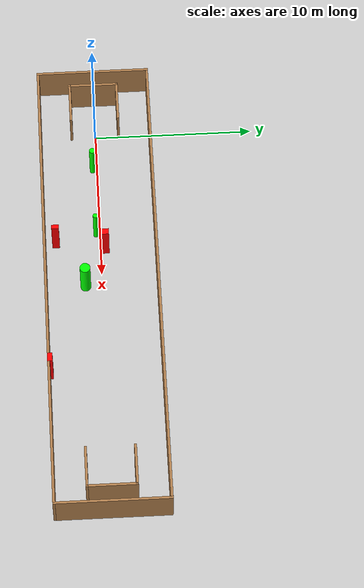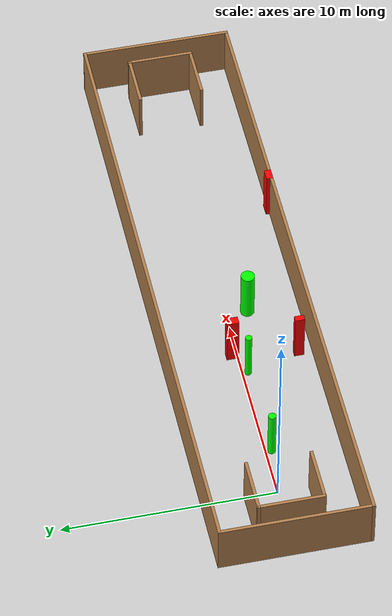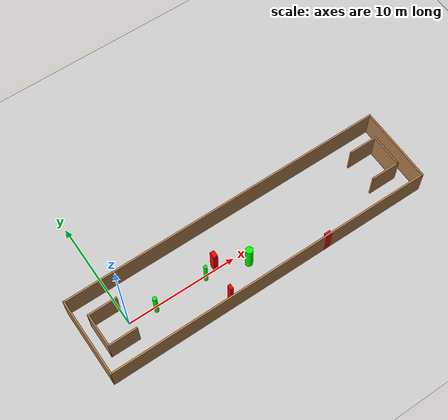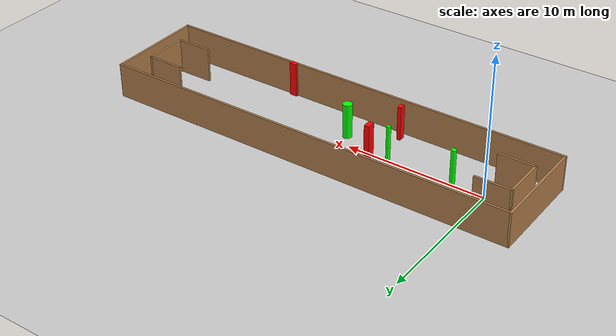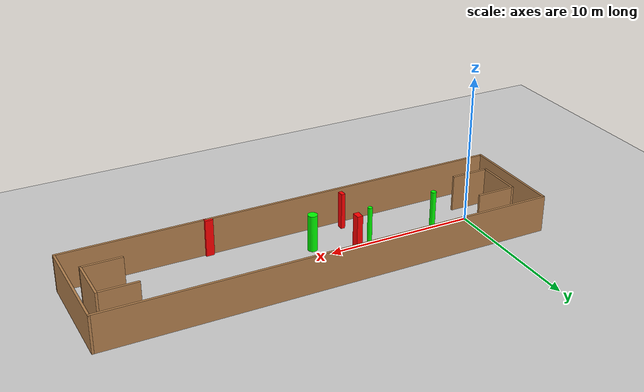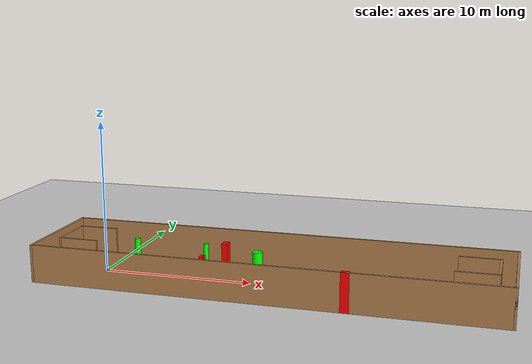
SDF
<sdf version="1.7">
 <world name="default">
  <light name="sun" type="directional">
   <pose>0 0 10 0 -0 0</pose>
   <diffuse>0.8 0.8 0.8 1</diffuse>
   <specular>0.2 0.2 0.2 1</specular>
   <attenuation>
    <range>1000</range>
    <constant>0.9</constant>
    <linear>0.01</linear>
    <quadratic>0.001</quadratic>
   </attenuation>
   <direction>-0.5 0.1 -0.9</direction>
   <spot><inner_angle>0</inner_angle><outer_angle>0</outer_angle><falloff>0</falloff></spot>
  </light>
  <model name="ground_plane">
   <static>1</static>
   <link name="link">
    <collision name="collision">
     <geometry><plane><normal>0 0 1</normal><size>100 100</size></plane></geometry>
     <surface>
      <contact><collide_bitmask>65535</collide_bitmask></contact>
      <friction><ode><mu>100</mu><mu2>50</mu2></ode></friction>
     </surface>
    </collision>
    <visual name="visual">
     <cast_shadows>0</cast_shadows>
     <geometry><plane><normal>0 0 1</normal><size>100 100</size></plane></geometry>
     <material>
      <script><uri>file://media/materials/scripts/gazebo.material</uri><name>Gazebo/Grey</name></script>
     </material>
    </visual>
   </link>
  </model>
  <gravity>0 0 -9.8</gravity>
  <magnetic_field>6e-06 2.3e-05 -4.2e-05</magnetic_field>
  <atmosphere type="adiabatic"/>
  <physics type="ode">
   <max_step_size>0.001</max_step_size>
   <real_time_factor>1</real_time_factor>
   <real_time_update_rate>1000</real_time_update_rate>
  </physics>
  <scene><ambient>0.4 0.4 0.4 1</ambient><background>0.7 0.7 0.7 1</background><shadows>1</shadows></scene>
  <spherical_coordinates>
   <surface_model>EARTH_WGS84</surface_model>
   <latitude_deg>0</latitude_deg>
   <longitude_deg>0</longitude_deg>
   <elevation>0</elevation>
   <heading_deg>0</heading_deg>
  </spherical_coordinates>
  <model name="my_base_walls">
   <link name="Wall_0">
    <collision name="Wall_0_Collision">
     <geometry><box><size>7.15 0.15 2.5</size></box></geometry>
     <pose>0 0 1.25 0 -0 0</pose>
    </collision>
    <visual name="Wall_0_Visual">
     <pose>0 0 1.25 0 -0 0</pose>
     <geometry><box><size>7.15 0.15 2.5</size></box></geometry>
     <material>
      <script><uri>file://media/materials/scripts/gazebo.material</uri><name>Gazebo/Wood</name></script>
      <ambient>1 1 1 1</ambient>
     </material>
     <meta><layer>0</layer></meta>
    </visual>
    <pose>-15 0 0 0 -0 1.5708</pose>
   </link>
   <link name="Wall_10">
    <collision name="Wall_10_Collision">
     <geometry><box><size>2.65 0.15 2.5</size></box></geometry>
     <pose>0 0 1.25 0 -0 0</pose>
    </collision>
    <visual name="Wall_10_Visual">
     <pose>0 0 1.25 0 -0 0</pose>
     <geometry><box><size>2.65 0.15 2.5</size></box></geometry>
     <material>
      <script><uri>file://media/materials/scripts/gazebo.material</uri><name>Gazebo/Wood</name></script>
      <ambient>1 1 1 1</ambient>
     </material>
     <meta><layer>0</layer></meta>
    </visual>
    <pose>-12.75 -1.5 0 0 -0 0</pose>
   </link>
   <link name="Wall_12">
    <collision name="Wall_12_Collision">
     <geometry><box><size>2.65 0.15 2.5</size></box></geometry>
     <pose>0 0 1.25 0 -0 0</pose>
    </collision>
    <visual name="Wall_12_Visual">
     <pose>0 0 1.25 0 -0 0</pose>
     <geometry><box><size>2.65 0.15 2.5</size></box></geometry>
     <material>
      <script><uri>file://media/materials/scripts/gazebo.material</uri><name>Gazebo/Wood</name></script>
      <ambient>1 1 1 1</ambient>
     </material>
     <meta><layer>0</layer></meta>
    </visual>
    <pose>-12.75 1.5 0 0 -0 0</pose>
   </link>
   <link name="Wall_14">
    <collision name="Wall_14_Collision">
     <geometry><box><size>3.15 0.15 2.5</size></box></geometry>
     <pose>0 0 1.25 0 -0 0</pose>
    </collision>
    <visual name="Wall_14_Visual">
     <pose>0 0 1.25 0 -0 0</pose>
     <geometry><box><size>3.15 0.15 2.5</size></box></geometry>
     <material>
      <script><uri>file://media/materials/scripts/gazebo.material</uri><name>Gazebo/Wood</name></script>
      <ambient>1 1 1 1</ambient>
     </material>
     <meta><layer>0</layer></meta>
    </visual>
    <pose>14 0 0 0 -0 -1.5708</pose>
   </link>
   <link name="Wall_15">
    <collision name="Wall_15_Collision">
     <geometry><box><size>2.65 0.15 2.5</size></box></geometry>
     <pose>0 0 1.25 0 -0 0</pose>
    </collision>
    <visual name="Wall_15_Visual">
     <pose>0 0 1.25 0 -0 0</pose>
     <geometry><box><size>2.65 0.15 2.5</size></box></geometry>
     <material>
      <script><uri>file://media/materials/scripts/gazebo.material</uri><name>Gazebo/Wood</name></script>
      <ambient>1 1 1 1</ambient>
     </material>
     <meta><layer>0</layer></meta>
    </visual>
    <pose>12.75 -1.5 0 0 -0 3.14159</pose>
   </link>
   <link name="Wall_17">
    <collision name="Wall_17_Collision">
     <geometry><box><size>2.65 0.15 2.5</size></box></geometry>
     <pose>0 0 1.25 0 -0 0</pose>
    </collision>
    <visual name="Wall_17_Visual">
     <pose>0 0 1.25 0 -0 0</pose>
     <geometry><box><size>2.65 0.15 2.5</size></box></geometry>
     <material>
      <script><uri>file://media/materials/scripts/gazebo.material</uri><name>Gazebo/Wood</name></script>
      <ambient>1 1 1 1</ambient>
     </material>
     <meta><layer>0</layer></meta>
    </visual>
    <pose>12.75 1.5 0 0 -0 3.14159</pose>
   </link>
   <link name="Wall_2">
    <collision name="Wall_2_Collision">
     <geometry><box><size>30.15 0.15 2.5</size></box></geometry>
     <pose>0 0 1.25 0 -0 0</pose>
    </collision>
    <visual name="Wall_2_Visual">
     <pose>0 0 1.25 0 -0 0</pose>
     <geometry><box><size>30.15 0.15 2.5</size></box></geometry>
     <material>
      <script><uri>file://media/materials/scripts/gazebo.material</uri><name>Gazebo/Wood</name></script>
      <ambient>1 1 1 1</ambient>
     </material>
     <meta><layer>0</layer></meta>
    </visual>
    <pose>-0 -3.5 0 0 -0 0</pose>
   </link>
   <link name="Wall_4">
    <collision name="Wall_4_Collision">
     <geometry><box><size>30.15 0.15 2.5</size></box></geometry>
     <pose>0 0 1.25 0 -0 0</pose>
    </collision>
    <visual name="Wall_4_Visual">
     <pose>0 0 1.25 0 -0 0</pose>
     <geometry><box><size>30.15 0.15 2.5</size></box></geometry>
     <material>
      <script><uri>file://media/materials/scripts/gazebo.material</uri><name>Gazebo/Wood</name></script>
      <ambient>1 1 1 1</ambient>
     </material>
     <meta><layer>0</layer></meta>
    </visual>
    <pose>-0 3.5 0 0 -0 0</pose>
   </link>
   <link name="Wall_6">
    <collision name="Wall_6_Collision">
     <geometry><box><size>7.15 0.15 2.5</size></box></geometry>
     <pose>0 0 1.25 0 -0 0</pose>
    </collision>
    <visual name="Wall_6_Visual">
     <pose>0 0 1.25 0 -0 0</pose>
     <geometry><box><size>7.15 0.15 2.5</size></box></geometry>
     <material>
      <script><uri>file://media/materials/scripts/gazebo.material</uri><name>Gazebo/Wood</name></script>
      <ambient>1 1 1 1</ambient>
     </material>
     <meta><layer>0</layer></meta>
    </visual>
    <pose>15 0 0 0 -0 -1.5708</pose>
   </link>
   <link name="Wall_9">
    <collision name="Wall_9_Collision">
     <geometry><box><size>3.15 0.15 2.5</size></box></geometry>
     <pose>0 0 1.25 0 -0 0</pose>
    </collision>
    <visual name="Wall_9_Visual">
     <pose>0 0 1.25 0 -0 0</pose>
     <geometry><box><size>3.15 0.15 2.5</size></box></geometry>
     <material>
      <script><uri>file://media/materials/scripts/gazebo.material</uri><name>Gazebo/Wood</name></script>
      <ambient>1 1 1 1</ambient>
     </material>
     <meta><layer>0</layer></meta>
    </visual>
    <pose>-14 0 0 0 -0 -1.5708</pose>
   </link>
   <static>1</static>
   <pose>11.5 0 0 0 -0 0</pose>
  </model>
  <model name="cylinder1">
   <static>1</static>
   <link name="link">
    <inertial>
     <mass>1</mass>
     <inertia><ixx>0.5</ixx><ixy>0</ixy><ixz>0</ixz><iyy>0.5</iyy><iyz>0</iyz><izz>1</izz></inertia>
    </inertial>
    <collision name="collision">
     <geometry><cylinder><radius>0.18283891498113594</radius><length>2.5</length></cylinder></geometry>
    </collision>
    <visual name="visual">
     <geometry><cylinder><radius>0.18283891498113594</radius><length>2.5</length></cylinder></geometry>
     <material>
      <ambient>0 1 0 1</ambient>
      <diffuse>0 1 0 1</diffuse>
      <specular>0.1 0.1 0.1 1</specular>
      <emissive>0 0 0 0</emissive>
     </material>
    </visual>
   </link>
   <pose>2.4227417314906674 -0.2549684128259817 1.25 0 0 0</pose>
  </model>
  <model name="cylinder2">
   <static>1</static>
   <link name="link">
    <inertial>
     <mass>1</mass>
     <inertia><ixx>0.5</ixx><ixy>0</ixy><ixz>0</ixz><iyy>0.5</iyy><iyz>0</iyz><izz>1</izz></inertia>
    </inertial>
    <collision name="collision">
     <geometry><cylinder><radius>0.15352672437907616</radius><length>2.5</length></cylinder></geometry>
    </collision>
    <visual name="visual">
     <geometry><cylinder><radius>0.15352672437907616</radius><length>2.5</length></cylinder></geometry>
     <material>
      <ambient>0 1 0 1</ambient>
      <diffuse>0 1 0 1</diffuse>
      <specular>0.1 0.1 0.1 1</specular>
      <emissive>0 0 0 0</emissive>
     </material>
    </visual>
   </link>
   <pose>7.158010405362555 -0.243639352962695 1.25 0 0 0</pose>
  </model>
  <model name="cylinder3">
   <static>1</static>
   <link name="link">
    <inertial>
     <mass>1</mass>
     <inertia><ixx>0.5</ixx><ixy>0</ixy><ixz>0</ixz><iyy>0.5</iyy><iyz>0</iyz><izz>1</izz></inertia>
    </inertial>
    <collision name="collision">
     <geometry><cylinder><radius>0.32474403516608</radius><length>2.5</length></cylinder></geometry>
    </collision>
    <visual name="visual">
     <geometry><cylinder><radius>0.32474403516608</radius><length>2.5</length></cylinder></geometry>
     <material>
      <ambient>0 1 0 1</ambient>
      <diffuse>0 1 0 1</diffuse>
      <specular>0.1 0.1 0.1 1</specular>
      <emissive>0 0 0 0</emissive>
     </material>
    </visual>
   </link>
   <pose>10.828501396687612 -1.0338491592019516 1.25 0 0 0</pose>
  </model>
  <model name="box1">
   <static>1</static>
   <link name="link">
    <inertial>
     <mass>1</mass>
     <inertia><ixx>0.083</ixx><ixy>0</ixy><ixz>0</ixz><iyy>0.083</iyy><iyz>0</iyz><izz>0.083</izz></inertia>
    </inertial>
    <collision name="collision">
     <geometry><box><size>0.38652699920109723 0.5670523876683377 2.5</size></box></geometry>
    </collision>
    <visual name="visual">
     <geometry><box><size>0.38652699920109723 0.5670523876683377 2.5</size></box></geometry>
     <material>
      <ambient>1 0 0 1</ambient>
      <diffuse>1 0 0 1</diffuse>
      <specular>0.1 0.1 0.1 1</specular>
      <emissive>0 0 0 0</emissive>
     </material>
    </visual>
    <sensor name="my_contact" type="contact">
     <contact><collision>box_collision</collision><topic>__default_topic__</topic></contact>
    </sensor>
   </link>
   <pose>8.31076957511973 0.26481807447480143 1.25 0 0 0</pose>
  </model>
  <model name="box2">
   <static>1</static>
   <link name="link">
    <inertial>
     <mass>1</mass>
     <inertia><ixx>0.083</ixx><ixy>0</ixy><ixz>0</ixz><iyy>0.083</iyy><iyz>0</iyz><izz>0.083</izz></inertia>
    </inertial>
    <collision name="collision">
     <geometry><box><size>0.5434032044404333 0.32007345175956714 2.5</size></box></geometry>
    </collision>
    <visual name="visual">
     <geometry><box><size>0.5434032044404333 0.32007345175956714 2.5</size></box></geometry>
     <material>
      <ambient>1 0 0 1</ambient>
      <diffuse>1 0 0 1</diffuse>
      <specular>0.1 0.1 0.1 1</specular>
      <emissive>0 0 0 0</emissive>
     </material>
    </visual>
    <sensor name="my_contact" type="contact">
     <contact><collision>box_collision</collision><topic>__default_topic__</topic></contact>
    </sensor>
   </link>
   <pose>16.865369736349027 -3.415651668676291 1.25 0 0 0</pose>
  </model>
  <model name="box3">
   <static>1</static>
   <link name="link">
    <inertial>
     <mass>1</mass>
     <inertia><ixx>0.083</ixx><ixy>0</ixy><ixz>0</ixz><iyy>0.083</iyy><iyz>0</iyz><izz>0.083</izz></inertia>
    </inertial>
    <collision name="collision">
     <geometry><box><size>0.27137190413260015 0.4551406877764707 2.5</size></box></geometry>
    </collision>
    <visual name="visual">
     <geometry><box><size>0.27137190413260015 0.4551406877764707 2.5</size></box></geometry>
     <material>
      <ambient>1 0 0 1</ambient>
      <diffuse>1 0 0 1</diffuse>
      <specular>0.1 0.1 0.1 1</specular>
      <emissive>0 0 0 0</emissive>
     </material>
    </visual>
    <sensor name="my_contact" type="contact">
     <contact><collision>box_collision</collision><topic>__default_topic__</topic></contact>
    </sensor>
   </link>
   <pose>7.821805334381095 -2.78848413879239 1.25 0 0 0</pose>
  </model>
 </world>
</sdf>
